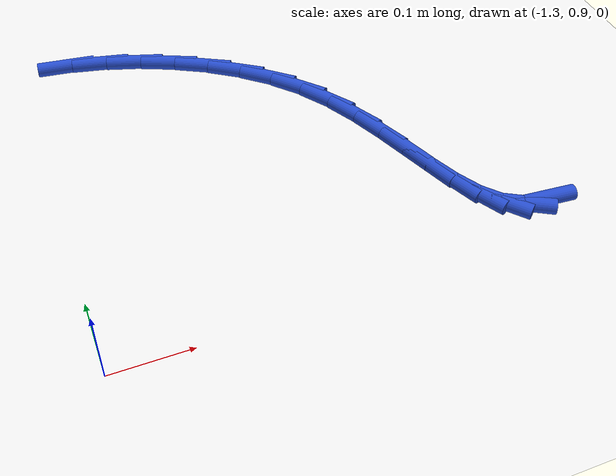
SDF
<sdf version="1.6">
 <world name="default">
  <model name="ground_plane">
   <static>1</static>
   <link name="link">
    <collision name="collision">
     <geometry><plane><normal>0 0 1</normal><size>100 100</size></plane></geometry>
     <surface><friction><ode><mu>100</mu><mu2>50</mu2></ode></friction></surface>
    </collision>
    <visual name="visual">
     <cast_shadows>0</cast_shadows>
     <geometry><plane><normal>0 0 1</normal><size>100 100</size></plane></geometry>
     <material>
      <script><uri>file://media/materials/scripts/gazebo.material</uri><name>Gazebo/WhiteGlow</name></script>
     </material>
    </visual>
   </link>
  </model>
  <model name="line">
   <link name="link_37">
    <pose>-0.737301977842919 0.9508606979922531 0.01 0 1.57 -0.07740267034636182</pose>
    <collision name="collision">
     <geometry><cylinder><radius>0.01</radius><length>0.08</length></cylinder></geometry>
    </collision>
    <visual name="visual">
     <material>
      <script><name>Gazebo/Blue</name><uri>file://media/materials/scripts/gazebo.material</uri></script>
     </material>
     <geometry><cylinder><radius>0.01</radius><length>0.08</length></cylinder></geometry>
    </visual>
   </link>
   <link name="link_38">
    <pose>-0.7656817503220757 0.9530617655818225 0.01 0 1.57 -0.5123504061385515</pose>
    <collision name="collision">
     <geometry><cylinder><radius>0.01</radius><length>0.08</length></cylinder></geometry>
    </collision>
    <visual name="visual">
     <material>
      <script><name>Gazebo/Blue</name><uri>file://media/materials/scripts/gazebo.material</uri></script>
     </material>
     <geometry><cylinder><radius>0.01</radius><length>0.08</length></cylinder></geometry>
    </visual>
   </link>
   <link name="link_39">
    <pose>-0.7889922523363688 0.9661727245713243 0.01 0 1.57 -0.8587184407550742</pose>
    <collision name="collision">
     <geometry><cylinder><radius>0.01</radius><length>0.08</length></cylinder></geometry>
    </collision>
    <visual name="visual">
     <material>
      <script><name>Gazebo/Blue</name><uri>file://media/materials/scripts/gazebo.material</uri></script>
     </material>
     <geometry><cylinder><radius>0.01</radius><length>0.08</length></cylinder></geometry>
    </visual>
   </link>
   <link name="link_40">
    <pose>-0.8083901491474638 0.9886461516493418 0.01 0 1.57 -1.0632357945586735</pose>
    <collision name="collision">
     <geometry><cylinder><radius>0.01</radius><length>0.08</length></cylinder></geometry>
    </collision>
    <visual name="visual">
     <material>
      <script><name>Gazebo/Blue</name><uri>file://media/materials/scripts/gazebo.material</uri></script>
     </material>
     <geometry><cylinder><radius>0.01</radius><length>0.08</length></cylinder></geometry>
    </visual>
   </link>
   <link name="link_41">
    <pose>-0.825132762707907 1.0187500845627737 0.01 0 1.57 -1.167900381079779</pose>
    <collision name="collision">
     <geometry><cylinder><radius>0.01</radius><length>0.08</length></cylinder></geometry>
    </collision>
    <visual name="visual">
     <material>
      <script><name>Gazebo/Blue</name><uri>file://media/materials/scripts/gazebo.material</uri></script>
     </material>
     <geometry><cylinder><radius>0.01</radius><length>0.08</length></cylinder></geometry>
    </visual>
   </link>
   <link name="link_42">
    <pose>-0.8404774149702444 1.054752561058519 0.01 0 1.57 -1.2089601656349578</pose>
    <collision name="collision">
     <geometry><cylinder><radius>0.01</radius><length>0.08</length></cylinder></geometry>
    </collision>
    <visual name="visual">
     <material>
      <script><name>Gazebo/Blue</name><uri>file://media/materials/scripts/gazebo.material</uri></script>
     </material>
     <geometry><cylinder><radius>0.01</radius><length>0.08</length></cylinder></geometry>
    </visual>
   </link>
   <link name="link_43">
    <pose>-0.855681427887023 1.0949216188834767 0.01 0 1.57 -1.2049590898502867</pose>
    <collision name="collision">
     <geometry><cylinder><radius>0.01</radius><length>0.08</length></cylinder></geometry>
    </collision>
    <visual name="visual">
     <material>
      <script><name>Gazebo/Blue</name><uri>file://media/materials/scripts/gazebo.material</uri></script>
     </material>
     <geometry><cylinder><radius>0.01</radius><length>0.08</length></cylinder></geometry>
    </visual>
   </link>
   <link name="link_44">
    <pose>-0.8720021234107886 1.1375252957845465 0.01 0 1.57 -1.163276972246386</pose>
    <collision name="collision">
     <geometry><cylinder><radius>0.01</radius><length>0.08</length></cylinder></geometry>
    </collision>
    <visual name="visual">
     <material>
      <script><name>Gazebo/Blue</name><uri>file://media/materials/scripts/gazebo.material</uri></script>
     </material>
     <geometry><cylinder><radius>0.01</radius><length>0.08</length></cylinder></geometry>
    </visual>
   </link>
   <link name="link_45">
    <pose>-0.890696823494088 1.1808316295086265 0.01 0 1.57 -1.0849309760015116</pose>
    <collision name="collision">
     <geometry><cylinder><radius>0.01</radius><length>0.08</length></cylinder></geometry>
    </collision>
    <visual name="visual">
     <material>
      <script><name>Gazebo/Blue</name><uri>file://media/materials/scripts/gazebo.material</uri></script>
     </material>
     <geometry><cylinder><radius>0.01</radius><length>0.08</length></cylinder></geometry>
    </visual>
   </link>
   <link name="link_46">
    <pose>-0.9130228500894665 1.2231086578026156 0.01 0 1.57 -0.9680348446010532</pose>
    <collision name="collision">
     <geometry><cylinder><radius>0.01</radius><length>0.08</length></cylinder></geometry>
    </collision>
    <visual name="visual">
     <material>
      <script><name>Gazebo/Blue</name><uri>file://media/materials/scripts/gazebo.material</uri></script>
     </material>
     <geometry><cylinder><radius>0.01</radius><length>0.08</length></cylinder></geometry>
    </visual>
   </link>
   <link name="link_47">
    <pose>-0.9402245717623101 1.262634641905796 0.01 0 1.57 -0.831123517315011</pose>
    <collision name="collision">
     <geometry><cylinder><radius>0.01</radius><length>0.08</length></cylinder></geometry>
    </collision>
    <visual name="visual">
     <material>
      <script><name>Gazebo/Blue</name><uri>file://media/materials/scripts/gazebo.material</uri></script>
     </material>
     <geometry><cylinder><radius>0.01</radius><length>0.08</length></cylinder></geometry>
    </visual>
   </link>
   <link name="link_48">
    <pose>-0.9727696386613364 1.298300869960585 0.01 0 1.57 -0.7055583168124736</pose>
    <collision name="collision">
     <geometry><cylinder><radius>0.01</radius><length>0.08</length></cylinder></geometry>
    </collision>
    <visual name="visual">
     <material>
      <script><name>Gazebo/Blue</name><uri>file://media/materials/scripts/gazebo.material</uri></script>
     </material>
     <geometry><cylinder><radius>0.01</radius><length>0.08</length></cylinder></geometry>
    </visual>
   </link>
   <link name="link_49">
    <pose>-1.0099220660741948 1.3299486018566278 0.01 0 1.57 -0.592590140321586</pose>
    <collision name="collision">
     <geometry><cylinder><radius>0.01</radius><length>0.08</length></cylinder></geometry>
    </collision>
    <visual name="visual">
     <material>
      <script><name>Gazebo/Blue</name><uri>file://media/materials/scripts/gazebo.material</uri></script>
     </material>
     <geometry><cylinder><radius>0.01</radius><length>0.08</length></cylinder></geometry>
    </visual>
   </link>
   <link name="link_50">
    <pose>-1.0508423633708652 1.3575007897813218 0.01 0 1.57 -0.48984431248607013</pose>
    <collision name="collision">
     <geometry><cylinder><radius>0.01</radius><length>0.08</length></cylinder></geometry>
    </collision>
    <visual name="visual">
     <material>
      <script><name>Gazebo/Blue</name><uri>file://media/materials/scripts/gazebo.material</uri></script>
     </material>
     <geometry><cylinder><radius>0.01</radius><length>0.08</length></cylinder></geometry>
    </visual>
   </link>
   <link name="link_51">
    <pose>-1.0946910399213288 1.3808803859220669 0.01 0 1.57 -0.3945927161951832</pose>
    <collision name="collision">
     <geometry><cylinder><radius>0.01</radius><length>0.08</length></cylinder></geometry>
    </collision>
    <visual name="visual">
     <material>
      <script><name>Gazebo/Blue</name><uri>file://media/materials/scripts/gazebo.material</uri></script>
     </material>
     <geometry><cylinder><radius>0.01</radius><length>0.08</length></cylinder></geometry>
    </visual>
   </link>
   <link name="link_52">
    <pose>-1.1406286050955652 1.4000103424662607 0.01 0 1.57 -0.3039916010189863</pose>
    <collision name="collision">
     <geometry><cylinder><radius>0.01</radius><length>0.08</length></cylinder></geometry>
    </collision>
    <visual name="visual">
     <material>
      <script><name>Gazebo/Blue</name><uri>file://media/materials/scripts/gazebo.material</uri></script>
     </material>
     <geometry><cylinder><radius>0.01</radius><length>0.08</length></cylinder></geometry>
    </visual>
   </link>
   <link name="link_53">
    <pose>-1.1878155682635552 1.4148136116013017 0.01 0 1.57 -0.21511143782192918</pose>
    <collision name="collision">
     <geometry><cylinder><radius>0.01</radius><length>0.08</length></cylinder></geometry>
    </collision>
    <visual name="visual">
     <material>
      <script><name>Gazebo/Blue</name><uri>file://media/materials/scripts/gazebo.material</uri></script>
     </material>
     <geometry><cylinder><radius>0.01</radius><length>0.08</length></cylinder></geometry>
    </visual>
   </link>
   <link name="link_54">
    <pose>-1.2354124387952785 1.4252131455145887 0.01 0 1.57 -0.12483174964531954</pose>
    <collision name="collision">
     <geometry><cylinder><radius>0.01</radius><length>0.08</length></cylinder></geometry>
    </collision>
    <visual name="visual">
     <material>
      <script><name>Gazebo/Blue</name><uri>file://media/materials/scripts/gazebo.material</uri></script>
     </material>
     <geometry><cylinder><radius>0.01</radius><length>0.08</length></cylinder></geometry>
    </visual>
   </link>
  </model>
 </world>
</sdf>
